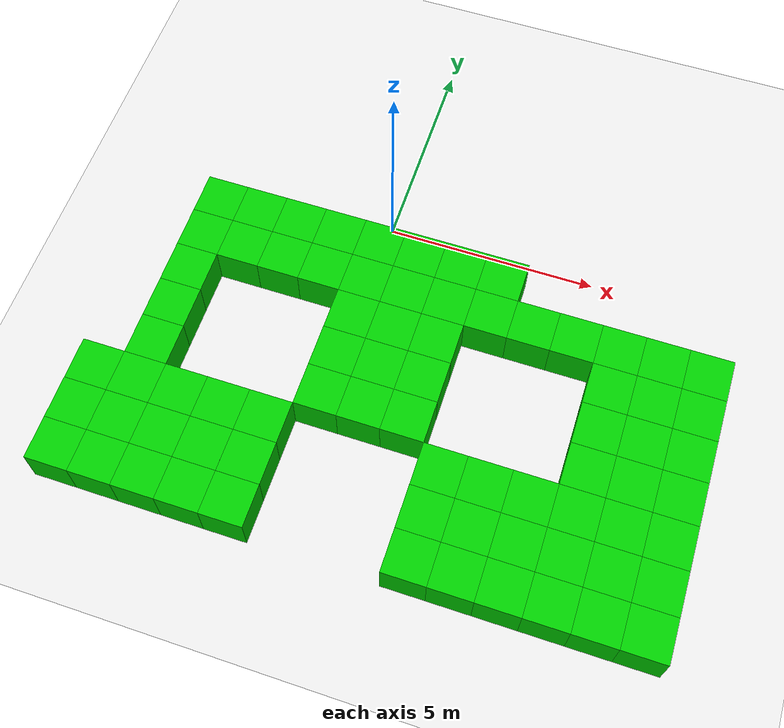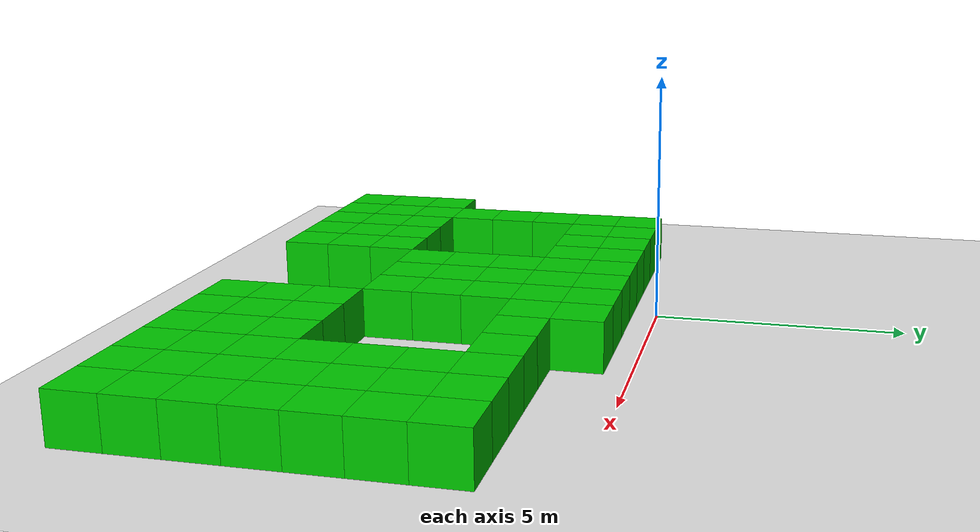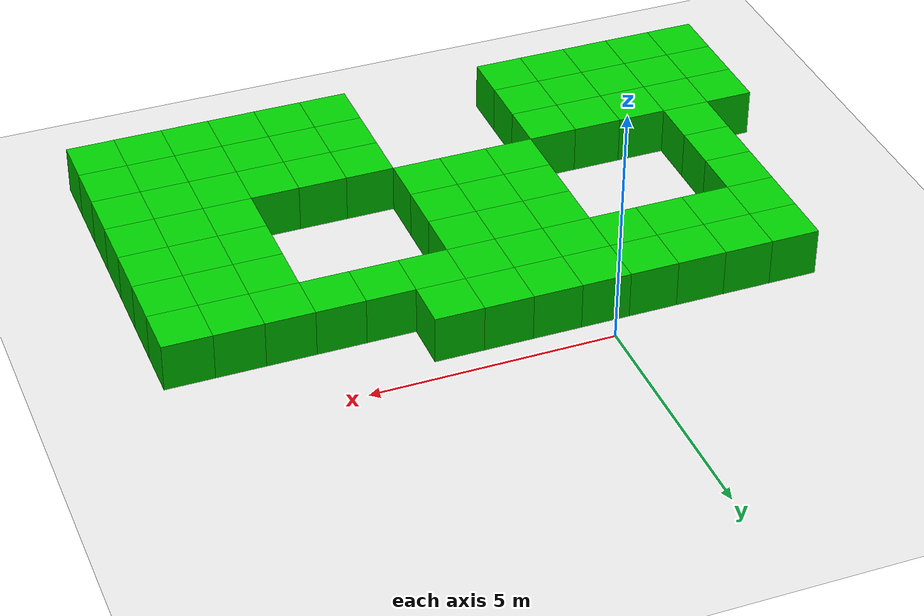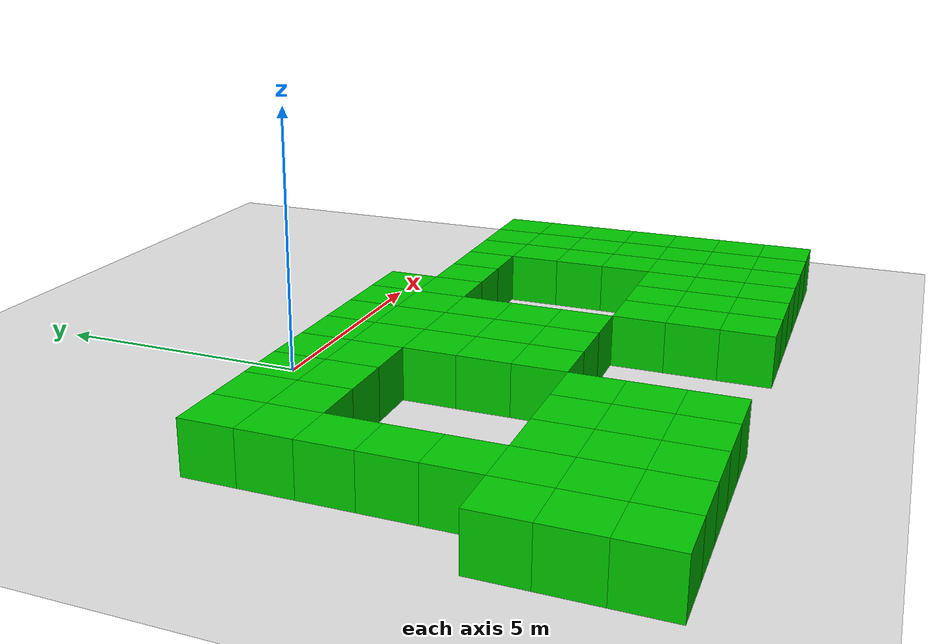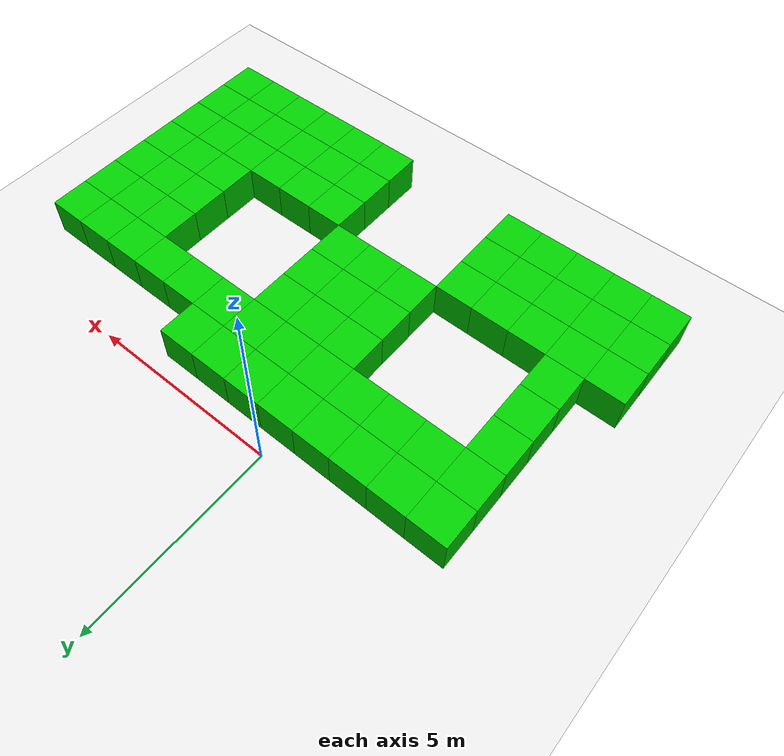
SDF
<sdf version="1.6">
 <world name="generated_maze">
  <model name="ground_plane">
   <static>true</static>
   <link name="link">
    <collision name="collision">
     <geometry><plane><normal>0 0 1</normal><size>100 100</size></plane></geometry>
    </collision>
    <visual name="visual">
     <geometry><plane><normal>0 0 1</normal><size>100 100</size></plane></geometry>
     <material>
      <ambient>0.9 0.9 0.9 1</ambient>
      <diffuse>0.9 0.9 0.9 1</diffuse>
      <specular>0.3 0.3 0.3 1</specular>
     </material>
    </visual>
   </link>
  </model>
  <model name="wall_10_5">
   <static>true</static>
   <pose>-4 -1 0.5 0 0 0</pose>
   <link name="link">
    <collision name="collision"><geometry><box><size>1 1 1</size></box></geometry></collision>
    <visual name="visual">
     <geometry><box><size>1 1 1</size></box></geometry>
     <material>
      <ambient>0.0 0.8 0.0 1</ambient>
      <diffuse>0.0 0.8 0.0 1</diffuse>
      <specular>0.1 0.1 0.1 1</specular>
     </material>
    </visual>
   </link>
  </model>
  <model name="wall_10_6">
   <static>true</static>
   <pose>-3 -1 0.5 0 0 0</pose>
   <link name="link">
    <collision name="collision"><geometry><box><size>1 1 1</size></box></geometry></collision>
    <visual name="visual">
     <geometry><box><size>1 1 1</size></box></geometry>
     <material>
      <ambient>0.0 0.8 0.0 1</ambient>
      <diffuse>0.0 0.8 0.0 1</diffuse>
      <specular>0.1 0.1 0.1 1</specular>
     </material>
    </visual>
   </link>
  </model>
  <model name="wall_10_7">
   <static>true</static>
   <pose>-2 -1 0.5 0 0 0</pose>
   <link name="link">
    <collision name="collision"><geometry><box><size>1 1 1</size></box></geometry></collision>
    <visual name="visual">
     <geometry><box><size>1 1 1</size></box></geometry>
     <material>
      <ambient>0.0 0.8 0.0 1</ambient>
      <diffuse>0.0 0.8 0.0 1</diffuse>
      <specular>0.1 0.1 0.1 1</specular>
     </material>
    </visual>
   </link>
  </model>
  <model name="wall_10_8">
   <static>true</static>
   <pose>-1 -1 0.5 0 0 0</pose>
   <link name="link">
    <collision name="collision"><geometry><box><size>1 1 1</size></box></geometry></collision>
    <visual name="visual">
     <geometry><box><size>1 1 1</size></box></geometry>
     <material>
      <ambient>0.0 0.8 0.0 1</ambient>
      <diffuse>0.0 0.8 0.0 1</diffuse>
      <specular>0.1 0.1 0.1 1</specular>
     </material>
    </visual>
   </link>
  </model>
  <model name="wall_10_9">
   <static>true</static>
   <pose>0 -1 0.5 0 0 0</pose>
   <link name="link">
    <collision name="collision"><geometry><box><size>1 1 1</size></box></geometry></collision>
    <visual name="visual">
     <geometry><box><size>1 1 1</size></box></geometry>
     <material>
      <ambient>0.0 0.8 0.0 1</ambient>
      <diffuse>0.0 0.8 0.0 1</diffuse>
      <specular>0.1 0.1 0.1 1</specular>
     </material>
    </visual>
   </link>
  </model>
  <model name="wall_10_10">
   <static>true</static>
   <pose>1 -1 0.5 0 0 0</pose>
   <link name="link">
    <collision name="collision"><geometry><box><size>1 1 1</size></box></geometry></collision>
    <visual name="visual">
     <geometry><box><size>1 1 1</size></box></geometry>
     <material>
      <ambient>0.0 0.8 0.0 1</ambient>
      <diffuse>0.0 0.8 0.0 1</diffuse>
      <specular>0.1 0.1 0.1 1</specular>
     </material>
    </visual>
   </link>
  </model>
  <model name="wall_10_11">
   <static>true</static>
   <pose>2 -1 0.5 0 0 0</pose>
   <link name="link">
    <collision name="collision"><geometry><box><size>1 1 1</size></box></geometry></collision>
    <visual name="visual">
     <geometry><box><size>1 1 1</size></box></geometry>
     <material>
      <ambient>0.0 0.8 0.0 1</ambient>
      <diffuse>0.0 0.8 0.0 1</diffuse>
      <specular>0.1 0.1 0.1 1</specular>
     </material>
    </visual>
   </link>
  </model>
  <model name="wall_10_12">
   <static>true</static>
   <pose>3 -1 0.5 0 0 0</pose>
   <link name="link">
    <collision name="collision"><geometry><box><size>1 1 1</size></box></geometry></collision>
    <visual name="visual">
     <geometry><box><size>1 1 1</size></box></geometry>
     <material>
      <ambient>0.0 0.8 0.0 1</ambient>
      <diffuse>0.0 0.8 0.0 1</diffuse>
      <specular>0.1 0.1 0.1 1</specular>
     </material>
    </visual>
   </link>
  </model>
  <model name="wall_11_5">
   <static>true</static>
   <pose>-4 -2 0.5 0 0 0</pose>
   <link name="link">
    <collision name="collision"><geometry><box><size>1 1 1</size></box></geometry></collision>
    <visual name="visual">
     <geometry><box><size>1 1 1</size></box></geometry>
     <material>
      <ambient>0.0 0.8 0.0 1</ambient>
      <diffuse>0.0 0.8 0.0 1</diffuse>
      <specular>0.1 0.1 0.1 1</specular>
     </material>
    </visual>
   </link>
  </model>
  <model name="wall_11_6">
   <static>true</static>
   <pose>-3 -2 0.5 0 0 0</pose>
   <link name="link">
    <collision name="collision"><geometry><box><size>1 1 1</size></box></geometry></collision>
    <visual name="visual">
     <geometry><box><size>1 1 1</size></box></geometry>
     <material>
      <ambient>0.0 0.8 0.0 1</ambient>
      <diffuse>0.0 0.8 0.0 1</diffuse>
      <specular>0.1 0.1 0.1 1</specular>
     </material>
    </visual>
   </link>
  </model>
  <model name="wall_11_7">
   <static>true</static>
   <pose>-2 -2 0.5 0 0 0</pose>
   <link name="link">
    <collision name="collision"><geometry><box><size>1 1 1</size></box></geometry></collision>
    <visual name="visual">
     <geometry><box><size>1 1 1</size></box></geometry>
     <material>
      <ambient>0.0 0.8 0.0 1</ambient>
      <diffuse>0.0 0.8 0.0 1</diffuse>
      <specular>0.1 0.1 0.1 1</specular>
     </material>
    </visual>
   </link>
  </model>
  <model name="wall_11_8">
   <static>true</static>
   <pose>-1 -2 0.5 0 0 0</pose>
   <link name="link">
    <collision name="collision"><geometry><box><size>1 1 1</size></box></geometry></collision>
    <visual name="visual">
     <geometry><box><size>1 1 1</size></box></geometry>
     <material>
      <ambient>0.0 0.8 0.0 1</ambient>
      <diffuse>0.0 0.8 0.0 1</diffuse>
      <specular>0.1 0.1 0.1 1</specular>
     </material>
    </visual>
   </link>
  </model>
  <model name="wall_11_9">
   <static>true</static>
   <pose>0 -2 0.5 0 0 0</pose>
   <link name="link">
    <collision name="collision"><geometry><box><size>1 1 1</size></box></geometry></collision>
    <visual name="visual">
     <geometry><box><size>1 1 1</size></box></geometry>
     <material>
      <ambient>0.0 0.8 0.0 1</ambient>
      <diffuse>0.0 0.8 0.0 1</diffuse>
      <specular>0.1 0.1 0.1 1</specular>
     </material>
    </visual>
   </link>
  </model>
  <model name="wall_11_10">
   <static>true</static>
   <pose>1 -2 0.5 0 0 0</pose>
   <link name="link">
    <collision name="collision"><geometry><box><size>1 1 1</size></box></geometry></collision>
    <visual name="visual">
     <geometry><box><size>1 1 1</size></box></geometry>
     <material>
      <ambient>0.0 0.8 0.0 1</ambient>
      <diffuse>0.0 0.8 0.0 1</diffuse>
      <specular>0.1 0.1 0.1 1</specular>
     </material>
    </visual>
   </link>
  </model>
  <model name="wall_11_11">
   <static>true</static>
   <pose>2 -2 0.5 0 0 0</pose>
   <link name="link">
    <collision name="collision"><geometry><box><size>1 1 1</size></box></geometry></collision>
    <visual name="visual">
     <geometry><box><size>1 1 1</size></box></geometry>
     <material>
      <ambient>0.0 0.8 0.0 1</ambient>
      <diffuse>0.0 0.8 0.0 1</diffuse>
      <specular>0.1 0.1 0.1 1</specular>
     </material>
    </visual>
   </link>
  </model>
  <model name="wall_11_12">
   <static>true</static>
   <pose>3 -2 0.5 0 0 0</pose>
   <link name="link">
    <collision name="collision"><geometry><box><size>1 1 1</size></box></geometry></collision>
    <visual name="visual">
     <geometry><box><size>1 1 1</size></box></geometry>
     <material>
      <ambient>0.0 0.8 0.0 1</ambient>
      <diffuse>0.0 0.8 0.0 1</diffuse>
      <specular>0.1 0.1 0.1 1</specular>
     </material>
    </visual>
   </link>
  </model>
  <model name="wall_11_13">
   <static>true</static>
   <pose>4 -2 0.5 0 0 0</pose>
   <link name="link">
    <collision name="collision"><geometry><box><size>1 1 1</size></box></geometry></collision>
    <visual name="visual">
     <geometry><box><size>1 1 1</size></box></geometry>
     <material>
      <ambient>0.0 0.8 0.0 1</ambient>
      <diffuse>0.0 0.8 0.0 1</diffuse>
      <specular>0.1 0.1 0.1 1</specular>
     </material>
    </visual>
   </link>
  </model>
  <model name="wall_11_14">
   <static>true</static>
   <pose>5 -2 0.5 0 0 0</pose>
   <link name="link">
    <collision name="collision"><geometry><box><size>1 1 1</size></box></geometry></collision>
    <visual name="visual">
     <geometry><box><size>1 1 1</size></box></geometry>
     <material>
      <ambient>0.0 0.8 0.0 1</ambient>
      <diffuse>0.0 0.8 0.0 1</diffuse>
      <specular>0.1 0.1 0.1 1</specular>
     </material>
    </visual>
   </link>
  </model>
  <model name="wall_11_15">
   <static>true</static>
   <pose>6 -2 0.5 0 0 0</pose>
   <link name="link">
    <collision name="collision"><geometry><box><size>1 1 1</size></box></geometry></collision>
    <visual name="visual">
     <geometry><box><size>1 1 1</size></box></geometry>
     <material>
      <ambient>0.0 0.8 0.0 1</ambient>
      <diffuse>0.0 0.8 0.0 1</diffuse>
      <specular>0.1 0.1 0.1 1</specular>
     </material>
    </visual>
   </link>
  </model>
  <model name="wall_11_16">
   <static>true</static>
   <pose>7 -2 0.5 0 0 0</pose>
   <link name="link">
    <collision name="collision"><geometry><box><size>1 1 1</size></box></geometry></collision>
    <visual name="visual">
     <geometry><box><size>1 1 1</size></box></geometry>
     <material>
      <ambient>0.0 0.8 0.0 1</ambient>
      <diffuse>0.0 0.8 0.0 1</diffuse>
      <specular>0.1 0.1 0.1 1</specular>
     </material>
    </visual>
   </link>
  </model>
  <model name="wall_11_17">
   <static>true</static>
   <pose>8 -2 0.5 0 0 0</pose>
   <link name="link">
    <collision name="collision"><geometry><box><size>1 1 1</size></box></geometry></collision>
    <visual name="visual">
     <geometry><box><size>1 1 1</size></box></geometry>
     <material>
      <ambient>0.0 0.8 0.0 1</ambient>
      <diffuse>0.0 0.8 0.0 1</diffuse>
      <specular>0.1 0.1 0.1 1</specular>
     </material>
    </visual>
   </link>
  </model>
  <model name="wall_12_5">
   <static>true</static>
   <pose>-4 -3 0.5 0 0 0</pose>
   <link name="link">
    <collision name="collision"><geometry><box><size>1 1 1</size></box></geometry></collision>
    <visual name="visual">
     <geometry><box><size>1 1 1</size></box></geometry>
     <material>
      <ambient>0.0 0.8 0.0 1</ambient>
      <diffuse>0.0 0.8 0.0 1</diffuse>
      <specular>0.1 0.1 0.1 1</specular>
     </material>
    </visual>
   </link>
  </model>
  <model name="wall_12_9">
   <static>true</static>
   <pose>0 -3 0.5 0 0 0</pose>
   <link name="link">
    <collision name="collision"><geometry><box><size>1 1 1</size></box></geometry></collision>
    <visual name="visual">
     <geometry><box><size>1 1 1</size></box></geometry>
     <material>
      <ambient>0.0 0.8 0.0 1</ambient>
      <diffuse>0.0 0.8 0.0 1</diffuse>
      <specular>0.1 0.1 0.1 1</specular>
     </material>
    </visual>
   </link>
  </model>
  <model name="wall_12_10">
   <static>true</static>
   <pose>1 -3 0.5 0 0 0</pose>
   <link name="link">
    <collision name="collision"><geometry><box><size>1 1 1</size></box></geometry></collision>
    <visual name="visual">
     <geometry><box><size>1 1 1</size></box></geometry>
     <material>
      <ambient>0.0 0.8 0.0 1</ambient>
      <diffuse>0.0 0.8 0.0 1</diffuse>
      <specular>0.1 0.1 0.1 1</specular>
     </material>
    </visual>
   </link>
  </model>
  <model name="wall_12_11">
   <static>true</static>
   <pose>2 -3 0.5 0 0 0</pose>
   <link name="link">
    <collision name="collision"><geometry><box><size>1 1 1</size></box></geometry></collision>
    <visual name="visual">
     <geometry><box><size>1 1 1</size></box></geometry>
     <material>
      <ambient>0.0 0.8 0.0 1</ambient>
      <diffuse>0.0 0.8 0.0 1</diffuse>
      <specular>0.1 0.1 0.1 1</specular>
     </material>
    </visual>
   </link>
  </model>
  <model name="wall_12_15">
   <static>true</static>
   <pose>6 -3 0.5 0 0 0</pose>
   <link name="link">
    <collision name="collision"><geometry><box><size>1 1 1</size></box></geometry></collision>
    <visual name="visual">
     <geometry><box><size>1 1 1</size></box></geometry>
     <material>
      <ambient>0.0 0.8 0.0 1</ambient>
      <diffuse>0.0 0.8 0.0 1</diffuse>
      <specular>0.1 0.1 0.1 1</specular>
     </material>
    </visual>
   </link>
  </model>
  <model name="wall_12_16">
   <static>true</static>
   <pose>7 -3 0.5 0 0 0</pose>
   <link name="link">
    <collision name="collision"><geometry><box><size>1 1 1</size></box></geometry></collision>
    <visual name="visual">
     <geometry><box><size>1 1 1</size></box></geometry>
     <material>
      <ambient>0.0 0.8 0.0 1</ambient>
      <diffuse>0.0 0.8 0.0 1</diffuse>
      <specular>0.1 0.1 0.1 1</specular>
     </material>
    </visual>
   </link>
  </model>
  <model name="wall_12_17">
   <static>true</static>
   <pose>8 -3 0.5 0 0 0</pose>
   <link name="link">
    <collision name="collision"><geometry><box><size>1 1 1</size></box></geometry></collision>
    <visual name="visual">
     <geometry><box><size>1 1 1</size></box></geometry>
     <material>
      <ambient>0.0 0.8 0.0 1</ambient>
      <diffuse>0.0 0.8 0.0 1</diffuse>
      <specular>0.1 0.1 0.1 1</specular>
     </material>
    </visual>
   </link>
  </model>
  <model name="wall_13_5">
   <static>true</static>
   <pose>-4 -4 0.5 0 0 0</pose>
   <link name="link">
    <collision name="collision"><geometry><box><size>1 1 1</size></box></geometry></collision>
    <visual name="visual">
     <geometry><box><size>1 1 1</size></box></geometry>
     <material>
      <ambient>0.0 0.8 0.0 1</ambient>
      <diffuse>0.0 0.8 0.0 1</diffuse>
      <specular>0.1 0.1 0.1 1</specular>
     </material>
    </visual>
   </link>
  </model>
  <model name="wall_13_9">
   <static>true</static>
   <pose>0 -4 0.5 0 0 0</pose>
   <link name="link">
    <collision name="collision"><geometry><box><size>1 1 1</size></box></geometry></collision>
    <visual name="visual">
     <geometry><box><size>1 1 1</size></box></geometry>
     <material>
      <ambient>0.0 0.8 0.0 1</ambient>
      <diffuse>0.0 0.8 0.0 1</diffuse>
      <specular>0.1 0.1 0.1 1</specular>
     </material>
    </visual>
   </link>
  </model>
  <model name="wall_13_10">
   <static>true</static>
   <pose>1 -4 0.5 0 0 0</pose>
   <link name="link">
    <collision name="collision"><geometry><box><size>1 1 1</size></box></geometry></collision>
    <visual name="visual">
     <geometry><box><size>1 1 1</size></box></geometry>
     <material>
      <ambient>0.0 0.8 0.0 1</ambient>
      <diffuse>0.0 0.8 0.0 1</diffuse>
      <specular>0.1 0.1 0.1 1</specular>
     </material>
    </visual>
   </link>
  </model>
  <model name="wall_13_11">
   <static>true</static>
   <pose>2 -4 0.5 0 0 0</pose>
   <link name="link">
    <collision name="collision"><geometry><box><size>1 1 1</size></box></geometry></collision>
    <visual name="visual">
     <geometry><box><size>1 1 1</size></box></geometry>
     <material>
      <ambient>0.0 0.8 0.0 1</ambient>
      <diffuse>0.0 0.8 0.0 1</diffuse>
      <specular>0.1 0.1 0.1 1</specular>
     </material>
    </visual>
   </link>
  </model>
  <model name="wall_13_15">
   <static>true</static>
   <pose>6 -4 0.5 0 0 0</pose>
   <link name="link">
    <collision name="collision"><geometry><box><size>1 1 1</size></box></geometry></collision>
    <visual name="visual">
     <geometry><box><size>1 1 1</size></box></geometry>
     <material>
      <ambient>0.0 0.8 0.0 1</ambient>
      <diffuse>0.0 0.8 0.0 1</diffuse>
      <specular>0.1 0.1 0.1 1</specular>
     </material>
    </visual>
   </link>
  </model>
  <model name="wall_13_16">
   <static>true</static>
   <pose>7 -4 0.5 0 0 0</pose>
   <link name="link">
    <collision name="collision"><geometry><box><size>1 1 1</size></box></geometry></collision>
    <visual name="visual">
     <geometry><box><size>1 1 1</size></box></geometry>
     <material>
      <ambient>0.0 0.8 0.0 1</ambient>
      <diffuse>0.0 0.8 0.0 1</diffuse>
      <specular>0.1 0.1 0.1 1</specular>
     </material>
    </visual>
   </link>
  </model>
  <model name="wall_13_17">
   <static>true</static>
   <pose>8 -4 0.5 0 0 0</pose>
   <link name="link">
    <collision name="collision"><geometry><box><size>1 1 1</size></box></geometry></collision>
    <visual name="visual">
     <geometry><box><size>1 1 1</size></box></geometry>
     <material>
      <ambient>0.0 0.8 0.0 1</ambient>
      <diffuse>0.0 0.8 0.0 1</diffuse>
      <specular>0.1 0.1 0.1 1</specular>
     </material>
    </visual>
   </link>
  </model>
  <model name="wall_14_5">
   <static>true</static>
   <pose>-4 -5 0.5 0 0 0</pose>
   <link name="link">
    <collision name="collision"><geometry><box><size>1 1 1</size></box></geometry></collision>
    <visual name="visual">
     <geometry><box><size>1 1 1</size></box></geometry>
     <material>
      <ambient>0.0 0.8 0.0 1</ambient>
      <diffuse>0.0 0.8 0.0 1</diffuse>
      <specular>0.1 0.1 0.1 1</specular>
     </material>
    </visual>
   </link>
  </model>
  <model name="wall_14_9">
   <static>true</static>
   <pose>0 -5 0.5 0 0 0</pose>
   <link name="link">
    <collision name="collision"><geometry><box><size>1 1 1</size></box></geometry></collision>
    <visual name="visual">
     <geometry><box><size>1 1 1</size></box></geometry>
     <material>
      <ambient>0.0 0.8 0.0 1</ambient>
      <diffuse>0.0 0.8 0.0 1</diffuse>
      <specular>0.1 0.1 0.1 1</specular>
     </material>
    </visual>
   </link>
  </model>
  <model name="wall_14_10">
   <static>true</static>
   <pose>1 -5 0.5 0 0 0</pose>
   <link name="link">
    <collision name="collision"><geometry><box><size>1 1 1</size></box></geometry></collision>
    <visual name="visual">
     <geometry><box><size>1 1 1</size></box></geometry>
     <material>
      <ambient>0.0 0.8 0.0 1</ambient>
      <diffuse>0.0 0.8 0.0 1</diffuse>
      <specular>0.1 0.1 0.1 1</specular>
     </material>
    </visual>
   </link>
  </model>
  <model name="wall_14_11">
   <static>true</static>
   <pose>2 -5 0.5 0 0 0</pose>
   <link name="link">
    <collision name="collision"><geometry><box><size>1 1 1</size></box></geometry></collision>
    <visual name="visual">
     <geometry><box><size>1 1 1</size></box></geometry>
     <material>
      <ambient>0.0 0.8 0.0 1</ambient>
      <diffuse>0.0 0.8 0.0 1</diffuse>
      <specular>0.1 0.1 0.1 1</specular>
     </material>
    </visual>
   </link>
  </model>
  <model name="wall_14_15">
   <static>true</static>
   <pose>6 -5 0.5 0 0 0</pose>
   <link name="link">
    <collision name="collision"><geometry><box><size>1 1 1</size></box></geometry></collision>
    <visual name="visual">
     <geometry><box><size>1 1 1</size></box></geometry>
     <material>
      <ambient>0.0 0.8 0.0 1</ambient>
      <diffuse>0.0 0.8 0.0 1</diffuse>
      <specular>0.1 0.1 0.1 1</specular>
     </material>
    </visual>
   </link>
  </model>
  <model name="wall_14_16">
   <static>true</static>
   <pose>7 -5 0.5 0 0 0</pose>
   <link name="link">
    <collision name="collision"><geometry><box><size>1 1 1</size></box></geometry></collision>
    <visual name="visual">
     <geometry><box><size>1 1 1</size></box></geometry>
     <material>
      <ambient>0.0 0.8 0.0 1</ambient>
      <diffuse>0.0 0.8 0.0 1</diffuse>
      <specular>0.1 0.1 0.1 1</specular>
     </material>
    </visual>
   </link>
  </model>
  <model name="wall_14_17">
   <static>true</static>
   <pose>8 -5 0.5 0 0 0</pose>
   <link name="link">
    <collision name="collision"><geometry><box><size>1 1 1</size></box></geometry></collision>
    <visual name="visual">
     <geometry><box><size>1 1 1</size></box></geometry>
     <material>
      <ambient>0.0 0.8 0.0 1</ambient>
      <diffuse>0.0 0.8 0.0 1</diffuse>
      <specular>0.1 0.1 0.1 1</specular>
     </material>
    </visual>
   </link>
  </model>
  <model name="wall_15_4">
   <static>true</static>
   <pose>-5 -6 0.5 0 0 0</pose>
   <link name="link">
    <collision name="collision"><geometry><box><size>1 1 1</size></box></geometry></collision>
    <visual name="visual">
     <geometry><box><size>1 1 1</size></box></geometry>
     <material>
      <ambient>0.0 0.8 0.0 1</ambient>
      <diffuse>0.0 0.8 0.0 1</diffuse>
      <specular>0.1 0.1 0.1 1</specular>
     </material>
    </visual>
   </link>
  </model>
  <model name="wall_15_5">
   <static>true</static>
   <pose>-4 -6 0.5 0 0 0</pose>
   <link name="link">
    <collision name="collision"><geometry><box><size>1 1 1</size></box></geometry></collision>
    <visual name="visual">
     <geometry><box><size>1 1 1</size></box></geometry>
     <material>
      <ambient>0.0 0.8 0.0 1</ambient>
      <diffuse>0.0 0.8 0.0 1</diffuse>
      <specular>0.1 0.1 0.1 1</specular>
     </material>
    </visual>
   </link>
  </model>
  <model name="wall_15_6">
   <static>true</static>
   <pose>-3 -6 0.5 0 0 0</pose>
   <link name="link">
    <collision name="collision"><geometry><box><size>1 1 1</size></box></geometry></collision>
    <visual name="visual">
     <geometry><box><size>1 1 1</size></box></geometry>
     <material>
      <ambient>0.0 0.8 0.0 1</ambient>
      <diffuse>0.0 0.8 0.0 1</diffuse>
      <specular>0.1 0.1 0.1 1</specular>
     </material>
    </visual>
   </link>
  </model>
  <model name="wall_15_7">
   <static>true</static>
   <pose>-2 -6 0.5 0 0 0</pose>
   <link name="link">
    <collision name="collision"><geometry><box><size>1 1 1</size></box></geometry></collision>
    <visual name="visual">
     <geometry><box><size>1 1 1</size></box></geometry>
     <material>
      <ambient>0.0 0.8 0.0 1</ambient>
      <diffuse>0.0 0.8 0.0 1</diffuse>
      <specular>0.1 0.1 0.1 1</specular>
     </material>
    </visual>
   </link>
  </model>
  <model name="wall_15_8">
   <static>true</static>
   <pose>-1 -6 0.5 0 0 0</pose>
   <link name="link">
    <collision name="collision"><geometry><box><size>1 1 1</size></box></geometry></collision>
    <visual name="visual">
     <geometry><box><size>1 1 1</size></box></geometry>
     <material>
      <ambient>0.0 0.8 0.0 1</ambient>
      <diffuse>0.0 0.8 0.0 1</diffuse>
      <specular>0.1 0.1 0.1 1</specular>
     </material>
    </visual>
   </link>
  </model>
  <model name="wall_15_12">
   <static>true</static>
   <pose>3 -6 0.5 0 0 0</pose>
   <link name="link">
    <collision name="collision"><geometry><box><size>1 1 1</size></box></geometry></collision>
    <visual name="visual">
     <geometry><box><size>1 1 1</size></box></geometry>
     <material>
      <ambient>0.0 0.8 0.0 1</ambient>
      <diffuse>0.0 0.8 0.0 1</diffuse>
      <specular>0.1 0.1 0.1 1</specular>
     </material>
    </visual>
   </link>
  </model>
  <model name="wall_15_13">
   <static>true</static>
   <pose>4 -6 0.5 0 0 0</pose>
   <link name="link">
    <collision name="collision"><geometry><box><size>1 1 1</size></box></geometry></collision>
    <visual name="visual">
     <geometry><box><size>1 1 1</size></box></geometry>
     <material>
      <ambient>0.0 0.8 0.0 1</ambient>
      <diffuse>0.0 0.8 0.0 1</diffuse>
      <specular>0.1 0.1 0.1 1</specular>
     </material>
    </visual>
   </link>
  </model>
  <model name="wall_15_14">
   <static>true</static>
   <pose>5 -6 0.5 0 0 0</pose>
   <link name="link">
    <collision name="collision"><geometry><box><size>1 1 1</size></box></geometry></collision>
    <visual name="visual">
     <geometry><box><size>1 1 1</size></box></geometry>
     <material>
      <ambient>0.0 0.8 0.0 1</ambient>
      <diffuse>0.0 0.8 0.0 1</diffuse>
      <specular>0.1 0.1 0.1 1</specular>
     </material>
    </visual>
   </link>
  </model>
  <model name="wall_15_15">
   <static>true</static>
   <pose>6 -6 0.5 0 0 0</pose>
   <link name="link">
    <collision name="collision"><geometry><box><size>1 1 1</size></box></geometry></collision>
    <visual name="visual">
     <geometry><box><size>1 1 1</size></box></geometry>
     <material>
      <ambient>0.0 0.8 0.0 1</ambient>
      <diffuse>0.0 0.8 0.0 1</diffuse>
      <specular>0.1 0.1 0.1 1</specular>
     </material>
    </visual>
   </link>
  </model>
  <model name="wall_15_16">
   <static>true</static>
   <pose>7 -6 0.5 0 0 0</pose>
   <link name="link">
    <collision name="collision"><geometry><box><size>1 1 1</size></box></geometry></collision>
    <visual name="visual">
     <geometry><box><size>1 1 1</size></box></geometry>
     <material>
      <ambient>0.0 0.8 0.0 1</ambient>
      <diffuse>0.0 0.8 0.0 1</diffuse>
      <specular>0.1 0.1 0.1 1</specular>
     </material>
    </visual>
   </link>
  </model>
  <model name="wall_15_17">
   <static>true</static>
   <pose>8 -6 0.5 0 0 0</pose>
   <link name="link">
    <collision name="collision"><geometry><box><size>1 1 1</size></box></geometry></collision>
    <visual name="visual">
     <geometry><box><size>1 1 1</size></box></geometry>
     <material>
      <ambient>0.0 0.8 0.0 1</ambient>
      <diffuse>0.0 0.8 0.0 1</diffuse>
      <specular>0.1 0.1 0.1 1</specular>
     </material>
    </visual>
   </link>
  </model>
  <model name="wall_16_4">
   <static>true</static>
   <pose>-5 -7 0.5 0 0 0</pose>
   <link name="link">
    <collision name="collision"><geometry><box><size>1 1 1</size></box></geometry></collision>
    <visual name="visual">
     <geometry><box><size>1 1 1</size></box></geometry>
     <material>
      <ambient>0.0 0.8 0.0 1</ambient>
      <diffuse>0.0 0.8 0.0 1</diffuse>
      <specular>0.1 0.1 0.1 1</specular>
     </material>
    </visual>
   </link>
  </model>
  <model name="wall_16_5">
   <static>true</static>
   <pose>-4 -7 0.5 0 0 0</pose>
   <link name="link">
    <collision name="collision"><geometry><box><size>1 1 1</size></box></geometry></collision>
    <visual name="visual">
     <geometry><box><size>1 1 1</size></box></geometry>
     <material>
      <ambient>0.0 0.8 0.0 1</ambient>
      <diffuse>0.0 0.8 0.0 1</diffuse>
      <specular>0.1 0.1 0.1 1</specular>
     </material>
    </visual>
   </link>
  </model>
  <model name="wall_16_6">
   <static>true</static>
   <pose>-3 -7 0.5 0 0 0</pose>
   <link name="link">
    <collision name="collision"><geometry><box><size>1 1 1</size></box></geometry></collision>
    <visual name="visual">
     <geometry><box><size>1 1 1</size></box></geometry>
     <material>
      <ambient>0.0 0.8 0.0 1</ambient>
      <diffuse>0.0 0.8 0.0 1</diffuse>
      <specular>0.1 0.1 0.1 1</specular>
     </material>
    </visual>
   </link>
  </model>
  <model name="wall_16_7">
   <static>true</static>
   <pose>-2 -7 0.5 0 0 0</pose>
   <link name="link">
    <collision name="collision"><geometry><box><size>1 1 1</size></box></geometry></collision>
    <visual name="visual">
     <geometry><box><size>1 1 1</size></box></geometry>
     <material>
      <ambient>0.0 0.8 0.0 1</ambient>
      <diffuse>0.0 0.8 0.0 1</diffuse>
      <specular>0.1 0.1 0.1 1</specular>
     </material>
    </visual>
   </link>
  </model>
  <model name="wall_16_8">
   <static>true</static>
   <pose>-1 -7 0.5 0 0 0</pose>
   <link name="link">
    <collision name="collision"><geometry><box><size>1 1 1</size></box></geometry></collision>
    <visual name="visual">
     <geometry><box><size>1 1 1</size></box></geometry>
     <material>
      <ambient>0.0 0.8 0.0 1</ambient>
      <diffuse>0.0 0.8 0.0 1</diffuse>
      <specular>0.1 0.1 0.1 1</specular>
     </material>
    </visual>
   </link>
  </model>
  <model name="wall_16_12">
   <static>true</static>
   <pose>3 -7 0.5 0 0 0</pose>
   <link name="link">
    <collision name="collision"><geometry><box><size>1 1 1</size></box></geometry></collision>
    <visual name="visual">
     <geometry><box><size>1 1 1</size></box></geometry>
     <material>
      <ambient>0.0 0.8 0.0 1</ambient>
      <diffuse>0.0 0.8 0.0 1</diffuse>
      <specular>0.1 0.1 0.1 1</specular>
     </material>
    </visual>
   </link>
  </model>
  <model name="wall_16_13">
   <static>true</static>
   <pose>4 -7 0.5 0 0 0</pose>
   <link name="link">
    <collision name="collision"><geometry><box><size>1 1 1</size></box></geometry></collision>
    <visual name="visual">
     <geometry><box><size>1 1 1</size></box></geometry>
     <material>
      <ambient>0.0 0.8 0.0 1</ambient>
      <diffuse>0.0 0.8 0.0 1</diffuse>
      <specular>0.1 0.1 0.1 1</specular>
     </material>
    </visual>
   </link>
  </model>
  <model name="wall_16_14">
   <static>true</static>
   <pose>5 -7 0.5 0 0 0</pose>
   <link name="link">
    <collision name="collision"><geometry><box><size>1 1 1</size></box></geometry></collision>
    <visual name="visual">
     <geometry><box><size>1 1 1</size></box></geometry>
     <material>
      <ambient>0.0 0.8 0.0 1</ambient>
      <diffuse>0.0 0.8 0.0 1</diffuse>
      <specular>0.1 0.1 0.1 1</specular>
     </material>
    </visual>
   </link>
  </model>
  <model name="wall_16_15">
   <static>true</static>
   <pose>6 -7 0.5 0 0 0</pose>
   <link name="link">
    <collision name="collision"><geometry><box><size>1 1 1</size></box></geometry></collision>
    <visual name="visual">
     <geometry><box><size>1 1 1</size></box></geometry>
     <material>
      <ambient>0.0 0.8 0.0 1</ambient>
      <diffuse>0.0 0.8 0.0 1</diffuse>
      <specular>0.1 0.1 0.1 1</specular>
     </material>
    </visual>
   </link>
  </model>
  <model name="wall_16_16">
   <static>true</static>
   <pose>7 -7 0.5 0 0 0</pose>
   <link name="link">
    <collision name="collision"><geometry><box><size>1 1 1</size></box></geometry></collision>
    <visual name="visual">
     <geometry><box><size>1 1 1</size></box></geometry>
     <material>
      <ambient>0.0 0.8 0.0 1</ambient>
      <diffuse>0.0 0.8 0.0 1</diffuse>
      <specular>0.1 0.1 0.1 1</specular>
     </material>
    </visual>
   </link>
  </model>
  <model name="wall_16_17">
   <static>true</static>
   <pose>8 -7 0.5 0 0 0</pose>
   <link name="link">
    <collision name="collision"><geometry><box><size>1 1 1</size></box></geometry></collision>
    <visual name="visual">
     <geometry><box><size>1 1 1</size></box></geometry>
     <material>
      <ambient>0.0 0.8 0.0 1</ambient>
      <diffuse>0.0 0.8 0.0 1</diffuse>
      <specular>0.1 0.1 0.1 1</specular>
     </material>
    </visual>
   </link>
  </model>
  <model name="wall_17_4">
   <static>true</static>
   <pose>-5 -8 0.5 0 0 0</pose>
   <link name="link">
    <collision name="collision"><geometry><box><size>1 1 1</size></box></geometry></collision>
    <visual name="visual">
     <geometry><box><size>1 1 1</size></box></geometry>
     <material>
      <ambient>0.0 0.8 0.0 1</ambient>
      <diffuse>0.0 0.8 0.0 1</diffuse>
      <specular>0.1 0.1 0.1 1</specular>
     </material>
    </visual>
   </link>
  </model>
  <model name="wall_17_5">
   <static>true</static>
   <pose>-4 -8 0.5 0 0 0</pose>
   <link name="link">
    <collision name="collision"><geometry><box><size>1 1 1</size></box></geometry></collision>
    <visual name="visual">
     <geometry><box><size>1 1 1</size></box></geometry>
     <material>
      <ambient>0.0 0.8 0.0 1</ambient>
      <diffuse>0.0 0.8 0.0 1</diffuse>
      <specular>0.1 0.1 0.1 1</specular>
     </material>
    </visual>
   </link>
  </model>
  <model name="wall_17_6">
   <static>true</static>
   <pose>-3 -8 0.5 0 0 0</pose>
   <link name="link">
    <collision name="collision"><geometry><box><size>1 1 1</size></box></geometry></collision>
    <visual name="visual">
     <geometry><box><size>1 1 1</size></box></geometry>
     <material>
      <ambient>0.0 0.8 0.0 1</ambient>
      <diffuse>0.0 0.8 0.0 1</diffuse>
      <specular>0.1 0.1 0.1 1</specular>
     </material>
    </visual>
   </link>
  </model>
  <model name="wall_17_7">
   <static>true</static>
   <pose>-2 -8 0.5 0 0 0</pose>
   <link name="link">
    <collision name="collision"><geometry><box><size>1 1 1</size></box></geometry></collision>
    <visual name="visual">
     <geometry><box><size>1 1 1</size></box></geometry>
     <material>
      <ambient>0.0 0.8 0.0 1</ambient>
      <diffuse>0.0 0.8 0.0 1</diffuse>
      <specular>0.1 0.1 0.1 1</specular>
     </material>
    </visual>
   </link>
  </model>
  <model name="wall_17_8">
   <static>true</static>
   <pose>-1 -8 0.5 0 0 0</pose>
   <link name="link">
    <collision name="collision"><geometry><box><size>1 1 1</size></box></geometry></collision>
    <visual name="visual">
     <geometry><box><size>1 1 1</size></box></geometry>
     <material>
      <ambient>0.0 0.8 0.0 1</ambient>
      <diffuse>0.0 0.8 0.0 1</diffuse>
      <specular>0.1 0.1 0.1 1</specular>
     </material>
    </visual>
   </link>
  </model>
  <model name="wall_17_12">
   <static>true</static>
   <pose>3 -8 0.5 0 0 0</pose>
   <link name="link">
    <collision name="collision"><geometry><box><size>1 1 1</size></box></geometry></collision>
    <visual name="visual">
     <geometry><box><size>1 1 1</size></box></geometry>
     <material>
      <ambient>0.0 0.8 0.0 1</ambient>
      <diffuse>0.0 0.8 0.0 1</diffuse>
      <specular>0.1 0.1 0.1 1</specular>
     </material>
    </visual>
   </link>
  </model>
  <model name="wall_17_13">
   <static>true</static>
   <pose>4 -8 0.5 0 0 0</pose>
   <link name="link">
    <collision name="collision"><geometry><box><size>1 1 1</size></box></geometry></collision>
    <visual name="visual">
     <geometry><box><size>1 1 1</size></box></geometry>
     <material>
      <ambient>0.0 0.8 0.0 1</ambient>
      <diffuse>0.0 0.8 0.0 1</diffuse>
      <specular>0.1 0.1 0.1 1</specular>
     </material>
    </visual>
   </link>
  </model>
  <model name="wall_17_14">
   <static>true</static>
   <pose>5 -8 0.5 0 0 0</pose>
   <link name="link">
    <collision name="collision"><geometry><box><size>1 1 1</size></box></geometry></collision>
    <visual name="visual">
     <geometry><box><size>1 1 1</size></box></geometry>
     <material>
      <ambient>0.0 0.8 0.0 1</ambient>
      <diffuse>0.0 0.8 0.0 1</diffuse>
      <specular>0.1 0.1 0.1 1</specular>
     </material>
    </visual>
   </link>
  </model>
  <model name="wall_17_15">
   <static>true</static>
   <pose>6 -8 0.5 0 0 0</pose>
   <link name="link">
    <collision name="collision"><geometry><box><size>1 1 1</size></box></geometry></collision>
    <visual name="visual">
     <geometry><box><size>1 1 1</size></box></geometry>
     <material>
      <ambient>0.0 0.8 0.0 1</ambient>
      <diffuse>0.0 0.8 0.0 1</diffuse>
      <specular>0.1 0.1 0.1 1</specular>
     </material>
    </visual>
   </link>
  </model>
  <model name="wall_17_16">
   <static>true</static>
   <pose>7 -8 0.5 0 0 0</pose>
   <link name="link">
    <collision name="collision"><geometry><box><size>1 1 1</size></box></geometry></collision>
    <visual name="visual">
     <geometry><box><size>1 1 1</size></box></geometry>
     <material>
      <ambient>0.0 0.8 0.0 1</ambient>
      <diffuse>0.0 0.8 0.0 1</diffuse>
      <specular>0.1 0.1 0.1 1</specular>
     </material>
    </visual>
   </link>
  </model>
  <model name="wall_17_17">
   <static>true</static>
   <pose>8 -8 0.5 0 0 0</pose>
   <link name="link">
    <collision name="collision"><geometry><box><size>1 1 1</size></box></geometry></collision>
    <visual name="visual">
     <geometry><box><size>1 1 1</size></box></geometry>
     <material>
      <ambient>0.0 0.8 0.0 1</ambient>
      <diffuse>0.0 0.8 0.0 1</diffuse>
      <specular>0.1 0.1 0.1 1</specular>
     </material>
    </visual>
   </link>
  </model>
 </world>
</sdf>
